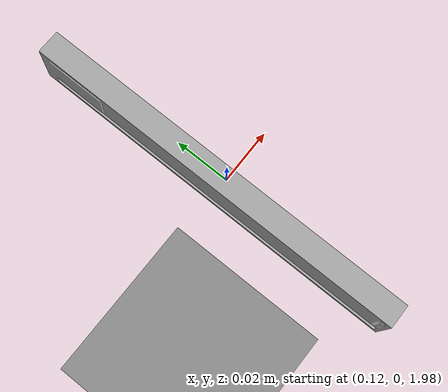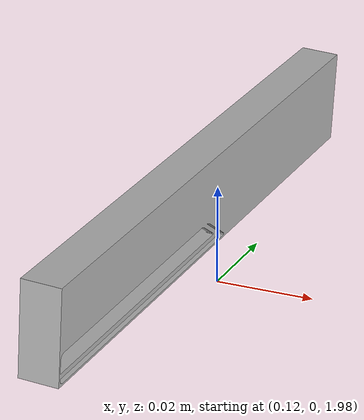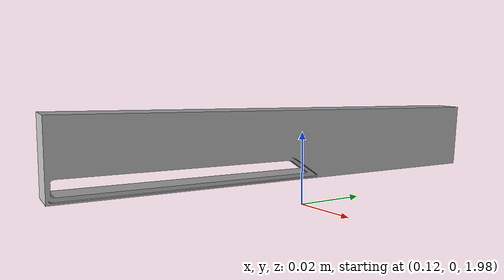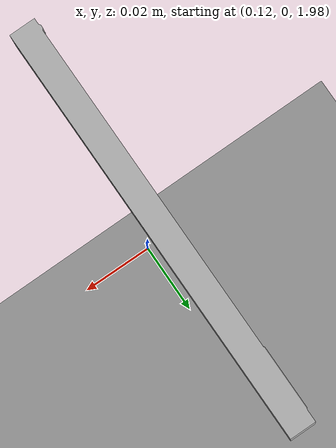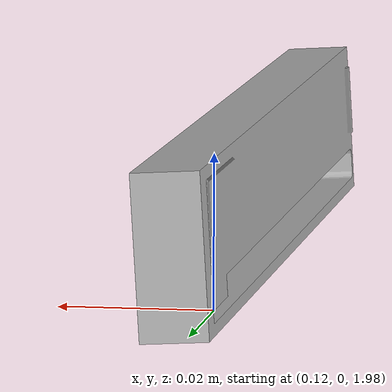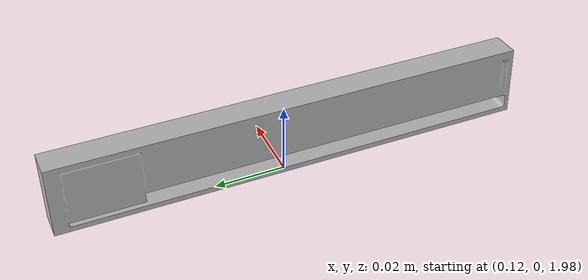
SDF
<?xml version='1.0'?>
<sdf version='1.7'>
  <model name='camera1'>
    <model name='camera1'>
      <link name='link_0'>
        <inertial>
          <mass>1</mass>
          <inertia>
            <ixx>0.166667</ixx>
            <ixy>0</ixy>
            <ixz>0</ixz>
            <iyy>0.166667</iyy>
            <iyz>0</iyz>
            <izz>0.166667</izz>
          </inertia>
          <pose>0 0 0 0 -0 0</pose>
        </inertial>
        <pose>0 0 0 0 -0 0</pose>
        <gravity>1</gravity>
        <self_collide>0</self_collide>
        <kinematic>0</kinematic>
        <enable_wind>0</enable_wind>
        <visual name='visual'>
          <pose>0 0 0 0 -0 0</pose>
          <geometry>
            <box>
              <size>0.5 0.5 0.05</size>
            </box>
          </geometry>
          <material>
            <lighting>1</lighting>
            <script>
              <uri>file://media/materials/scripts/gazebo.material</uri>
              <name>Gazebo/Grey</name>
            </script>
            <shader type='pixel'>
              <normal_map>__default__</normal_map>
            </shader>
            <ambient>0.3 0.3 0.3 1</ambient>
            <diffuse>0.7 0.7 0.7 1</diffuse>
            <specular>0.01 0.01 0.01 1</specular>
            <emissive>0 0 0 1</emissive>
          </material>
          <transparency>0</transparency>
          <cast_shadows>1</cast_shadows>
        </visual>
        <collision name='collision'>
          <laser_retro>0</laser_retro>
          <max_contacts>10</max_contacts>
          <pose>0 0 0 0 -0 0</pose>
          <geometry>
            <box>
              <size>0.5 0.5 0.05</size>
            </box>
          </geometry>
          <surface>
            <friction>
              <ode>
                <mu>1</mu>
                <mu2>1</mu2>
                <fdir1>0 0 0</fdir1>
                <slip1>0</slip1>
                <slip2>0</slip2>
              </ode>
              <torsional>
                <coefficient>1</coefficient>
                <patch_radius>0</patch_radius>
                <surface_radius>0</surface_radius>
                <use_patch_radius>1</use_patch_radius>
                <ode>
                  <slip>0</slip>
                </ode>
              </torsional>
            </friction>
            <bounce>
              <restitution_coefficient>0</restitution_coefficient>
              <threshold>1e+06</threshold>
            </bounce>
            <contact>
              <collide_without_contact>0</collide_without_contact>
              <collide_without_contact_bitmask>1</collide_without_contact_bitmask>
              <collide_bitmask>1</collide_bitmask>
              <ode>
                <soft_cfm>0</soft_cfm>
                <soft_erp>0.2</soft_erp>
                <kp>1e+13</kp>
                <kd>1</kd>
                <max_vel>0.01</max_vel>
                <min_depth>0</min_depth>
              </ode>
              <bullet>
                <split_impulse>1</split_impulse>
                <split_impulse_penetration_threshold>-0.01</split_impulse_penetration_threshold>
                <soft_cfm>0</soft_cfm>
                <soft_erp>0.2</soft_erp>
                <kp>1e+13</kp>
                <kd>1</kd>
              </bullet>
            </contact>
          </surface>
        </collision>
      </link>
      <model name='intel_realsense_r200'>
        <pose>0 0 2 0 -0 0</pose>
        <link name='link'>
          <inertial>
            <mass>0.2</mass>
            <inertia>
              <ixx>0.00014395</ixx>
              <ixy>0</ixy>
              <ixz>0</ixz>
              <iyy>3.84e-06</iyy>
              <iyz>0</iyz>
              <izz>0.00014136</izz>
            </inertia>
          </inertial>
          <collision name='collision'>
            <geometry>
              <box>
                <size>0.008 0.13 0.02</size>
              </box>
            </geometry>
            <surface>
              <contact>
                <ode>
                  <max_vel>0.1</max_vel>
                  <min_depth>0.001</min_depth>
                </ode>
              </contact>
              <friction>
                <ode>
                  <mu>0.4</mu>
                  <mu2>0.4</mu2>
                </ode>
              </friction>
            </surface>
          </collision>
          <visual name='visual'>
            <geometry>
              <mesh>
                <uri>model://intel_realsense_r200/meshes/realsense_r200.dae</uri>
              </mesh>
            </geometry>
          </visual>
          <sensor name='camera' type='depth'>
            <pose>0 -0.045 0 0 -0 0</pose>
            <update_rate>60</update_rate>
            <camera>
              <horizontal_fov>0.976899</horizontal_fov>
              <image>
                <width>480</width>
                <height>360</height>
                <format>R8G8B8</format>
              </image>
              <clip>
                <near>0.5</near>
                <far>10</far>
              </clip>
            </camera>
          </sensor>
        </link>
      </model>
      <joint name='base_camera' type='fixed'>
        <parent>link_0</parent>
        <child>intel_realsense_r200::link</child>
        <pose>0 0 0 0 -0 0</pose>
        <physics>
          <ode>
            <limit>
              <cfm>0</cfm>
              <erp>0.2</erp>
            </limit>
            <suspension>
              <cfm>0</cfm>
              <erp>0.2</erp>
            </suspension>
          </ode>
        </physics>
      </joint>
      <static>0</static>
      <allow_auto_disable>1</allow_auto_disable>
      <pose>-0 -0 0 0 0.057532 0</pose>
    </model>
    <static>0</static>
    <allow_auto_disable>1</allow_auto_disable>
  </model>
</sdf>
